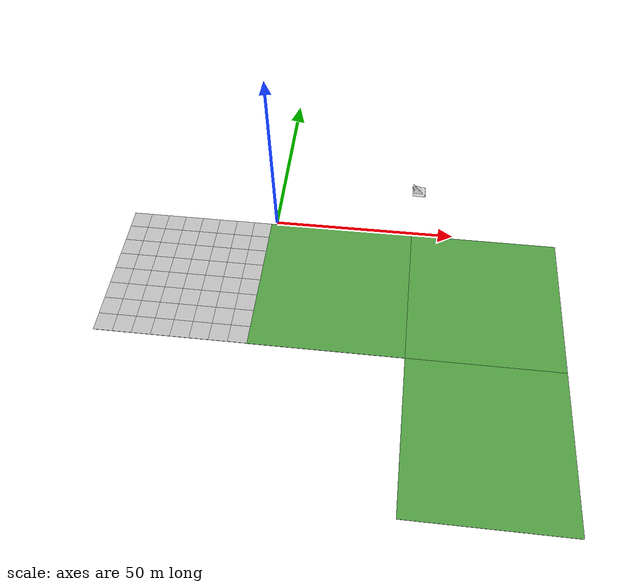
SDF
<sdf version="1.7">
 <world name="default">
  <model name="mud_plane_80x80">
   <model name="mud_plane_40x40">
    <model name="mud_plane_20x20">
     <model name="mud_plane">
      <static>1</static>
      <link name="link">
       <collision name="collision"><geometry><box><size>10 10 0.1</size></box></geometry></collision>
       <visual name="visual_1">
        <pose>-2.5 2.5 -0.05 0 -0 0</pose>
        <cast_shadows>0</cast_shadows>
        <geometry><box><size>5 5 0.1</size></box></geometry>
        <material>
         <script>
          <uri>model://mud_plane/materials/scripts</uri>
          <uri>model://mud_plane/materials/textures</uri>
          <name>vrc/mud</name>
         </script>
        </material>
       </visual>
       <visual name="visual_2">
        <pose>2.5 2.5 -0.05 0 -0 0</pose>
        <cast_shadows>0</cast_shadows>
        <geometry><box><size>5 5 0.1</size></box></geometry>
        <material>
         <script>
          <uri>model://mud_plane/materials/scripts</uri>
          <uri>model://mud_plane/materials/textures</uri>
          <name>vrc/mud</name>
         </script>
        </material>
       </visual>
       <visual name="visual_3">
        <pose>2.5 -2.5 -0.05 0 -0 0</pose>
        <cast_shadows>0</cast_shadows>
        <geometry><box><size>5 5 0.1</size></box></geometry>
        <material>
         <script>
          <uri>model://mud_plane/materials/scripts</uri>
          <uri>model://mud_plane/materials/textures</uri>
          <name>vrc/mud</name>
         </script>
        </material>
       </visual>
       <visual name="visual_4">
        <pose>-2.5 -2.5 -0.05 0 -0 0</pose>
        <cast_shadows>0</cast_shadows>
        <geometry><box><size>5 5 0.1</size></box></geometry>
        <material>
         <script>
          <uri>model://mud_plane/materials/scripts</uri>
          <uri>model://mud_plane/materials/textures</uri>
          <name>vrc/mud</name>
         </script>
        </material>
       </visual>
      </link>
      <pose>-4.99986 -4.99991 0 0 -0 0</pose>
     </model>
     <model name="mud_plane_0">
      <static>1</static>
      <link name="link">
       <collision name="collision"><geometry><box><size>10 10 0.1</size></box></geometry></collision>
       <visual name="visual_1">
        <pose>-2.5 2.5 -0.05 0 -0 0</pose>
        <cast_shadows>0</cast_shadows>
        <geometry><box><size>5 5 0.1</size></box></geometry>
        <material>
         <script>
          <uri>model://mud_plane/materials/scripts</uri>
          <uri>model://mud_plane/materials/textures</uri>
          <name>vrc/mud</name>
         </script>
        </material>
       </visual>
       <visual name="visual_2">
        <pose>2.5 2.5 -0.05 0 -0 0</pose>
        <cast_shadows>0</cast_shadows>
        <geometry><box><size>5 5 0.1</size></box></geometry>
        <material>
         <script>
          <uri>model://mud_plane/materials/scripts</uri>
          <uri>model://mud_plane/materials/textures</uri>
          <name>vrc/mud</name>
         </script>
        </material>
       </visual>
       <visual name="visual_3">
        <pose>2.5 -2.5 -0.05 0 -0 0</pose>
        <cast_shadows>0</cast_shadows>
        <geometry><box><size>5 5 0.1</size></box></geometry>
        <material>
         <script>
          <uri>model://mud_plane/materials/scripts</uri>
          <uri>model://mud_plane/materials/textures</uri>
          <name>vrc/mud</name>
         </script>
        </material>
       </visual>
       <visual name="visual_4">
        <pose>-2.5 -2.5 -0.05 0 -0 0</pose>
        <cast_shadows>0</cast_shadows>
        <geometry><box><size>5 5 0.1</size></box></geometry>
        <material>
         <script>
          <uri>model://mud_plane/materials/scripts</uri>
          <uri>model://mud_plane/materials/textures</uri>
          <name>vrc/mud</name>
         </script>
        </material>
       </visual>
      </link>
      <pose>-4.99946 4.99954 0 0 -0 0</pose>
     </model>
     <model name="mud_plane_1">
      <static>1</static>
      <link name="link">
       <collision name="collision"><geometry><box><size>10 10 0.1</size></box></geometry></collision>
       <visual name="visual_1">
        <pose>-2.5 2.5 -0.05 0 -0 0</pose>
        <cast_shadows>0</cast_shadows>
        <geometry><box><size>5 5 0.1</size></box></geometry>
        <material>
         <script>
          <uri>model://mud_plane/materials/scripts</uri>
          <uri>model://mud_plane/materials/textures</uri>
          <name>vrc/mud</name>
         </script>
        </material>
       </visual>
       <visual name="visual_2">
        <pose>2.5 2.5 -0.05 0 -0 0</pose>
        <cast_shadows>0</cast_shadows>
        <geometry><box><size>5 5 0.1</size></box></geometry>
        <material>
         <script>
          <uri>model://mud_plane/materials/scripts</uri>
          <uri>model://mud_plane/materials/textures</uri>
          <name>vrc/mud</name>
         </script>
        </material>
       </visual>
       <visual name="visual_3">
        <pose>2.5 -2.5 -0.05 0 -0 0</pose>
        <cast_shadows>0</cast_shadows>
        <geometry><box><size>5 5 0.1</size></box></geometry>
        <material>
         <script>
          <uri>model://mud_plane/materials/scripts</uri>
          <uri>model://mud_plane/materials/textures</uri>
          <name>vrc/mud</name>
         </script>
        </material>
       </visual>
       <visual name="visual_4">
        <pose>-2.5 -2.5 -0.05 0 -0 0</pose>
        <cast_shadows>0</cast_shadows>
        <geometry><box><size>5 5 0.1</size></box></geometry>
        <material>
         <script>
          <uri>model://mud_plane/materials/scripts</uri>
          <uri>model://mud_plane/materials/textures</uri>
          <name>vrc/mud</name>
         </script>
        </material>
       </visual>
      </link>
      <pose>4.99964 -4.99949 0 0 -0 0</pose>
     </model>
     <model name="mud_plane_2">
      <static>1</static>
      <link name="link">
       <collision name="collision"><geometry><box><size>10 10 0.1</size></box></geometry></collision>
       <visual name="visual_1">
        <pose>-2.5 2.5 -0.05 0 -0 0</pose>
        <cast_shadows>0</cast_shadows>
        <geometry><box><size>5 5 0.1</size></box></geometry>
        <material>
         <script>
          <uri>model://mud_plane/materials/scripts</uri>
          <uri>model://mud_plane/materials/textures</uri>
          <name>vrc/mud</name>
         </script>
        </material>
       </visual>
       <visual name="visual_2">
        <pose>2.5 2.5 -0.05 0 -0 0</pose>
        <cast_shadows>0</cast_shadows>
        <geometry><box><size>5 5 0.1</size></box></geometry>
        <material>
         <script>
          <uri>model://mud_plane/materials/scripts</uri>
          <uri>model://mud_plane/materials/textures</uri>
          <name>vrc/mud</name>
         </script>
        </material>
       </visual>
       <visual name="visual_3">
        <pose>2.5 -2.5 -0.05 0 -0 0</pose>
        <cast_shadows>0</cast_shadows>
        <geometry><box><size>5 5 0.1</size></box></geometry>
        <material>
         <script>
          <uri>model://mud_plane/materials/scripts</uri>
          <uri>model://mud_plane/materials/textures</uri>
          <name>vrc/mud</name>
         </script>
        </material>
       </visual>
       <visual name="visual_4">
        <pose>-2.5 -2.5 -0.05 0 -0 0</pose>
        <cast_shadows>0</cast_shadows>
        <geometry><box><size>5 5 0.1</size></box></geometry>
        <material>
         <script>
          <uri>model://mud_plane/materials/scripts</uri>
          <uri>model://mud_plane/materials/textures</uri>
          <name>vrc/mud</name>
         </script>
        </material>
       </visual>
      </link>
      <pose>4.99967 4.99986 0 0 -0 0</pose>
     </model>
     <static>0</static>
     <pose>-9.99895 9.99843 0 0 -0 0</pose>
    </model>
    <model name="mud_plane_20x20_0">
     <model name="mud_plane">
      <static>1</static>
      <link name="link">
       <collision name="collision"><geometry><box><size>10 10 0.1</size></box></geometry></collision>
       <visual name="visual_1">
        <pose>-2.5 2.5 -0.05 0 -0 0</pose>
        <cast_shadows>0</cast_shadows>
        <geometry><box><size>5 5 0.1</size></box></geometry>
        <material>
         <script>
          <uri>model://mud_plane/materials/scripts</uri>
          <uri>model://mud_plane/materials/textures</uri>
          <name>vrc/mud</name>
         </script>
        </material>
       </visual>
       <visual name="visual_2">
        <pose>2.5 2.5 -0.05 0 -0 0</pose>
        <cast_shadows>0</cast_shadows>
        <geometry><box><size>5 5 0.1</size></box></geometry>
        <material>
         <script>
          <uri>model://mud_plane/materials/scripts</uri>
          <uri>model://mud_plane/materials/textures</uri>
          <name>vrc/mud</name>
         </script>
        </material>
       </visual>
       <visual name="visual_3">
        <pose>2.5 -2.5 -0.05 0 -0 0</pose>
        <cast_shadows>0</cast_shadows>
        <geometry><box><size>5 5 0.1</size></box></geometry>
        <material>
         <script>
          <uri>model://mud_plane/materials/scripts</uri>
          <uri>model://mud_plane/materials/textures</uri>
          <name>vrc/mud</name>
         </script>
        </material>
       </visual>
       <visual name="visual_4">
        <pose>-2.5 -2.5 -0.05 0 -0 0</pose>
        <cast_shadows>0</cast_shadows>
        <geometry><box><size>5 5 0.1</size></box></geometry>
        <material>
         <script>
          <uri>model://mud_plane/materials/scripts</uri>
          <uri>model://mud_plane/materials/textures</uri>
          <name>vrc/mud</name>
         </script>
        </material>
       </visual>
      </link>
      <pose>-4.99986 -4.99991 0 0 -0 0</pose>
     </model>
     <model name="mud_plane_0">
      <static>1</static>
      <link name="link">
       <collision name="collision"><geometry><box><size>10 10 0.1</size></box></geometry></collision>
       <visual name="visual_1">
        <pose>-2.5 2.5 -0.05 0 -0 0</pose>
        <cast_shadows>0</cast_shadows>
        <geometry><box><size>5 5 0.1</size></box></geometry>
        <material>
         <script>
          <uri>model://mud_plane/materials/scripts</uri>
          <uri>model://mud_plane/materials/textures</uri>
          <name>vrc/mud</name>
         </script>
        </material>
       </visual>
       <visual name="visual_2">
        <pose>2.5 2.5 -0.05 0 -0 0</pose>
        <cast_shadows>0</cast_shadows>
        <geometry><box><size>5 5 0.1</size></box></geometry>
        <material>
         <script>
          <uri>model://mud_plane/materials/scripts</uri>
          <uri>model://mud_plane/materials/textures</uri>
          <name>vrc/mud</name>
         </script>
        </material>
       </visual>
       <visual name="visual_3">
        <pose>2.5 -2.5 -0.05 0 -0 0</pose>
        <cast_shadows>0</cast_shadows>
        <geometry><box><size>5 5 0.1</size></box></geometry>
        <material>
         <script>
          <uri>model://mud_plane/materials/scripts</uri>
          <uri>model://mud_plane/materials/textures</uri>
          <name>vrc/mud</name>
         </script>
        </material>
       </visual>
       <visual name="visual_4">
        <pose>-2.5 -2.5 -0.05 0 -0 0</pose>
        <cast_shadows>0</cast_shadows>
        <geometry><box><size>5 5 0.1</size></box></geometry>
        <material>
         <script>
          <uri>model://mud_plane/materials/scripts</uri>
          <uri>model://mud_plane/materials/textures</uri>
          <name>vrc/mud</name>
         </script>
        </material>
       </visual>
      </link>
      <pose>-4.99946 4.99954 0 0 -0 0</pose>
     </model>
     <model name="mud_plane_1">
      <static>1</static>
      <link name="link">
       <collision name="collision"><geometry><box><size>10 10 0.1</size></box></geometry></collision>
       <visual name="visual_1">
        <pose>-2.5 2.5 -0.05 0 -0 0</pose>
        <cast_shadows>0</cast_shadows>
        <geometry><box><size>5 5 0.1</size></box></geometry>
        <material>
         <script>
          <uri>model://mud_plane/materials/scripts</uri>
          <uri>model://mud_plane/materials/textures</uri>
          <name>vrc/mud</name>
         </script>
        </material>
       </visual>
       <visual name="visual_2">
        <pose>2.5 2.5 -0.05 0 -0 0</pose>
        <cast_shadows>0</cast_shadows>
        <geometry><box><size>5 5 0.1</size></box></geometry>
        <material>
         <script>
          <uri>model://mud_plane/materials/scripts</uri>
          <uri>model://mud_plane/materials/textures</uri>
          <name>vrc/mud</name>
         </script>
        </material>
       </visual>
       <visual name="visual_3">
        <pose>2.5 -2.5 -0.05 0 -0 0</pose>
        <cast_shadows>0</cast_shadows>
        <geometry><box><size>5 5 0.1</size></box></geometry>
        <material>
         <script>
          <uri>model://mud_plane/materials/scripts</uri>
          <uri>model://mud_plane/materials/textures</uri>
          <name>vrc/mud</name>
         </script>
        </material>
       </visual>
       <visual name="visual_4">
        <pose>-2.5 -2.5 -0.05 0 -0 0</pose>
        <cast_shadows>0</cast_shadows>
        <geometry><box><size>5 5 0.1</size></box></geometry>
        <material>
         <script>
          <uri>model://mud_plane/materials/scripts</uri>
          <uri>model://mud_plane/materials/textures</uri>
          <name>vrc/mud</name>
         </script>
        </material>
       </visual>
      </link>
      <pose>4.99964 -4.99949 0 0 -0 0</pose>
     </model>
     <model name="mud_plane_2">
      <static>1</static>
      <link name="link">
       <collision name="collision"><geometry><box><size>10 10 0.1</size></box></geometry></collision>
       <visual name="visual_1">
        <pose>-2.5 2.5 -0.05 0 -0 0</pose>
        <cast_shadows>0</cast_shadows>
        <geometry><box><size>5 5 0.1</size></box></geometry>
        <material>
         <script>
          <uri>model://mud_plane/materials/scripts</uri>
          <uri>model://mud_plane/materials/textures</uri>
          <name>vrc/mud</name>
         </script>
        </material>
       </visual>
       <visual name="visual_2">
        <pose>2.5 2.5 -0.05 0 -0 0</pose>
        <cast_shadows>0</cast_shadows>
        <geometry><box><size>5 5 0.1</size></box></geometry>
        <material>
         <script>
          <uri>model://mud_plane/materials/scripts</uri>
          <uri>model://mud_plane/materials/textures</uri>
          <name>vrc/mud</name>
         </script>
        </material>
       </visual>
       <visual name="visual_3">
        <pose>2.5 -2.5 -0.05 0 -0 0</pose>
        <cast_shadows>0</cast_shadows>
        <geometry><box><size>5 5 0.1</size></box></geometry>
        <material>
         <script>
          <uri>model://mud_plane/materials/scripts</uri>
          <uri>model://mud_plane/materials/textures</uri>
          <name>vrc/mud</name>
         </script>
        </material>
       </visual>
       <visual name="visual_4">
        <pose>-2.5 -2.5 -0.05 0 -0 0</pose>
        <cast_shadows>0</cast_shadows>
        <geometry><box><size>5 5 0.1</size></box></geometry>
        <material>
         <script>
          <uri>model://mud_plane/materials/scripts</uri>
          <uri>model://mud_plane/materials/textures</uri>
          <name>vrc/mud</name>
         </script>
        </material>
       </visual>
      </link>
      <pose>4.99967 4.99986 0 0 -0 0</pose>
     </model>
     <static>0</static>
     <pose>9.99933 9.9997 0 0 -0 0</pose>
    </model>
    <model name="mud_plane_20x20_1">
     <model name="mud_plane">
      <static>1</static>
      <link name="link">
       <collision name="collision"><geometry><box><size>10 10 0.1</size></box></geometry></collision>
       <visual name="visual_1">
        <pose>-2.5 2.5 -0.05 0 -0 0</pose>
        <cast_shadows>0</cast_shadows>
        <geometry><box><size>5 5 0.1</size></box></geometry>
        <material>
         <script>
          <uri>model://mud_plane/materials/scripts</uri>
          <uri>model://mud_plane/materials/textures</uri>
          <name>vrc/mud</name>
         </script>
        </material>
       </visual>
       <visual name="visual_2">
        <pose>2.5 2.5 -0.05 0 -0 0</pose>
        <cast_shadows>0</cast_shadows>
        <geometry><box><size>5 5 0.1</size></box></geometry>
        <material>
         <script>
          <uri>model://mud_plane/materials/scripts</uri>
          <uri>model://mud_plane/materials/textures</uri>
          <name>vrc/mud</name>
         </script>
        </material>
       </visual>
       <visual name="visual_3">
        <pose>2.5 -2.5 -0.05 0 -0 0</pose>
        <cast_shadows>0</cast_shadows>
        <geometry><box><size>5 5 0.1</size></box></geometry>
        <material>
         <script>
          <uri>model://mud_plane/materials/scripts</uri>
          <uri>model://mud_plane/materials/textures</uri>
          <name>vrc/mud</name>
         </script>
        </material>
       </visual>
       <visual name="visual_4">
        <pose>-2.5 -2.5 -0.05 0 -0 0</pose>
        <cast_shadows>0</cast_shadows>
        <geometry><box><size>5 5 0.1</size></box></geometry>
        <material>
         <script>
          <uri>model://mud_plane/materials/scripts</uri>
          <uri>model://mud_plane/materials/textures</uri>
          <name>vrc/mud</name>
         </script>
        </material>
       </visual>
      </link>
      <pose>-4.99986 -4.99991 0 0 -0 0</pose>
     </model>
     <model name="mud_plane_0">
      <static>1</static>
      <link name="link">
       <collision name="collision"><geometry><box><size>10 10 0.1</size></box></geometry></collision>
       <visual name="visual_1">
        <pose>-2.5 2.5 -0.05 0 -0 0</pose>
        <cast_shadows>0</cast_shadows>
        <geometry><box><size>5 5 0.1</size></box></geometry>
        <material>
         <script>
          <uri>model://mud_plane/materials/scripts</uri>
          <uri>model://mud_plane/materials/textures</uri>
          <name>vrc/mud</name>
         </script>
        </material>
       </visual>
       <visual name="visual_2">
        <pose>2.5 2.5 -0.05 0 -0 0</pose>
        <cast_shadows>0</cast_shadows>
        <geometry><box><size>5 5 0.1</size></box></geometry>
        <material>
         <script>
          <uri>model://mud_plane/materials/scripts</uri>
          <uri>model://mud_plane/materials/textures</uri>
          <name>vrc/mud</name>
         </script>
        </material>
       </visual>
       <visual name="visual_3">
        <pose>2.5 -2.5 -0.05 0 -0 0</pose>
        <cast_shadows>0</cast_shadows>
        <geometry><box><size>5 5 0.1</size></box></geometry>
        <material>
         <script>
          <uri>model://mud_plane/materials/scripts</uri>
          <uri>model://mud_plane/materials/textures</uri>
          <name>vrc/mud</name>
         </script>
        </material>
       </visual>
       <visual name="visual_4">
        <pose>-2.5 -2.5 -0.05 0 -0 0</pose>
        <cast_shadows>0</cast_shadows>
        <geometry><box><size>5 5 0.1</size></box></geometry>
        <material>
         <script>
          <uri>model://mud_plane/materials/scripts</uri>
          <uri>model://mud_plane/materials/textures</uri>
          <name>vrc/mud</name>
         </script>
        </material>
       </visual>
      </link>
      <pose>-4.99946 4.99954 0 0 -0 0</pose>
     </model>
     <model name="mud_plane_1">
      <static>1</static>
      <link name="link">
       <collision name="collision"><geometry><box><size>10 10 0.1</size></box></geometry></collision>
       <visual name="visual_1">
        <pose>-2.5 2.5 -0.05 0 -0 0</pose>
        <cast_shadows>0</cast_shadows>
        <geometry><box><size>5 5 0.1</size></box></geometry>
        <material>
         <script>
          <uri>model://mud_plane/materials/scripts</uri>
          <uri>model://mud_plane/materials/textures</uri>
          <name>vrc/mud</name>
         </script>
        </material>
       </visual>
       <visual name="visual_2">
        <pose>2.5 2.5 -0.05 0 -0 0</pose>
        <cast_shadows>0</cast_shadows>
        <geometry><box><size>5 5 0.1</size></box></geometry>
        <material>
         <script>
          <uri>model://mud_plane/materials/scripts</uri>
          <uri>model://mud_plane/materials/textures</uri>
          <name>vrc/mud</name>
         </script>
        </material>
       </visual>
       <visual name="visual_3">
        <pose>2.5 -2.5 -0.05 0 -0 0</pose>
        <cast_shadows>0</cast_shadows>
        <geometry><box><size>5 5 0.1</size></box></geometry>
        <material>
         <script>
          <uri>model://mud_plane/materials/scripts</uri>
          <uri>model://mud_plane/materials/textures</uri>
          <name>vrc/mud</name>
         </script>
        </material>
       </visual>
       <visual name="visual_4">
        <pose>-2.5 -2.5 -0.05 0 -0 0</pose>
        <cast_shadows>0</cast_shadows>
        <geometry><box><size>5 5 0.1</size></box></geometry>
        <material>
         <script>
          <uri>model://mud_plane/materials/scripts</uri>
          <uri>model://mud_plane/materials/textures</uri>
          <name>vrc/mud</name>
         </script>
        </material>
       </visual>
      </link>
      <pose>4.99964 -4.99949 0 0 -0 0</pose>
     </model>
     <model name="mud_plane_2">
      <static>1</static>
      <link name="link">
       <collision name="collision"><geometry><box><size>10 10 0.1</size></box></geometry></collision>
       <visual name="visual_1">
        <pose>-2.5 2.5 -0.05 0 -0 0</pose>
        <cast_shadows>0</cast_shadows>
        <geometry><box><size>5 5 0.1</size></box></geometry>
        <material>
         <script>
          <uri>model://mud_plane/materials/scripts</uri>
          <uri>model://mud_plane/materials/textures</uri>
          <name>vrc/mud</name>
         </script>
        </material>
       </visual>
       <visual name="visual_2">
        <pose>2.5 2.5 -0.05 0 -0 0</pose>
        <cast_shadows>0</cast_shadows>
        <geometry><box><size>5 5 0.1</size></box></geometry>
        <material>
         <script>
          <uri>model://mud_plane/materials/scripts</uri>
          <uri>model://mud_plane/materials/textures</uri>
          <name>vrc/mud</name>
         </script>
        </material>
       </visual>
       <visual name="visual_3">
        <pose>2.5 -2.5 -0.05 0 -0 0</pose>
        <cast_shadows>0</cast_shadows>
        <geometry><box><size>5 5 0.1</size></box></geometry>
        <material>
         <script>
          <uri>model://mud_plane/materials/scripts</uri>
          <uri>model://mud_plane/materials/textures</uri>
          <name>vrc/mud</name>
         </script>
        </material>
       </visual>
       <visual name="visual_4">
        <pose>-2.5 -2.5 -0.05 0 -0 0</pose>
        <cast_shadows>0</cast_shadows>
        <geometry><box><size>5 5 0.1</size></box></geometry>
        <material>
         <script>
          <uri>model://mud_plane/materials/scripts</uri>
          <uri>model://mud_plane/materials/textures</uri>
          <name>vrc/mud</name>
         </script>
        </material>
       </visual>
      </link>
      <pose>4.99967 4.99986 0 0 -0 0</pose>
     </model>
     <static>0</static>
     <pose>9.9993 -9.99877 0 0 -0 0</pose>
    </model>
    <model name="mud_plane_20x20_2">
     <model name="mud_plane">
      <static>1</static>
      <link name="link">
       <collision name="collision"><geometry><box><size>10 10 0.1</size></box></geometry></collision>
       <visual name="visual_1">
        <pose>-2.5 2.5 -0.05 0 -0 0</pose>
        <cast_shadows>0</cast_shadows>
        <geometry><box><size>5 5 0.1</size></box></geometry>
        <material>
         <script>
          <uri>model://mud_plane/materials/scripts</uri>
          <uri>model://mud_plane/materials/textures</uri>
          <name>vrc/mud</name>
         </script>
        </material>
       </visual>
       <visual name="visual_2">
        <pose>2.5 2.5 -0.05 0 -0 0</pose>
        <cast_shadows>0</cast_shadows>
        <geometry><box><size>5 5 0.1</size></box></geometry>
        <material>
         <script>
          <uri>model://mud_plane/materials/scripts</uri>
          <uri>model://mud_plane/materials/textures</uri>
          <name>vrc/mud</name>
         </script>
        </material>
       </visual>
       <visual name="visual_3">
        <pose>2.5 -2.5 -0.05 0 -0 0</pose>
        <cast_shadows>0</cast_shadows>
        <geometry><box><size>5 5 0.1</size></box></geometry>
        <material>
         <script>
          <uri>model://mud_plane/materials/scripts</uri>
          <uri>model://mud_plane/materials/textures</uri>
          <name>vrc/mud</name>
         </script>
        </material>
       </visual>
       <visual name="visual_4">
        <pose>-2.5 -2.5 -0.05 0 -0 0</pose>
        <cast_shadows>0</cast_shadows>
        <geometry><box><size>5 5 0.1</size></box></geometry>
        <material>
         <script>
          <uri>model://mud_plane/materials/scripts</uri>
          <uri>model://mud_plane/materials/textures</uri>
          <name>vrc/mud</name>
         </script>
        </material>
       </visual>
      </link>
      <pose>-4.99986 -4.99991 0 0 -0 0</pose>
     </model>
     <model name="mud_plane_0">
      <static>1</static>
      <link name="link">
       <collision name="collision"><geometry><box><size>10 10 0.1</size></box></geometry></collision>
       <visual name="visual_1">
        <pose>-2.5 2.5 -0.05 0 -0 0</pose>
        <cast_shadows>0</cast_shadows>
        <geometry><box><size>5 5 0.1</size></box></geometry>
        <material>
         <script>
          <uri>model://mud_plane/materials/scripts</uri>
          <uri>model://mud_plane/materials/textures</uri>
          <name>vrc/mud</name>
         </script>
        </material>
       </visual>
       <visual name="visual_2">
        <pose>2.5 2.5 -0.05 0 -0 0</pose>
        <cast_shadows>0</cast_shadows>
        <geometry><box><size>5 5 0.1</size></box></geometry>
        <material>
         <script>
          <uri>model://mud_plane/materials/scripts</uri>
          <uri>model://mud_plane/materials/textures</uri>
          <name>vrc/mud</name>
         </script>
        </material>
       </visual>
       <visual name="visual_3">
        <pose>2.5 -2.5 -0.05 0 -0 0</pose>
        <cast_shadows>0</cast_shadows>
        <geometry><box><size>5 5 0.1</size></box></geometry>
        <material>
         <script>
          <uri>model://mud_plane/materials/scripts</uri>
          <uri>model://mud_plane/materials/textures</uri>
          <name>vrc/mud</name>
         </script>
        </material>
       </visual>
       <visual name="visual_4">
        <pose>-2.5 -2.5 -0.05 0 -0 0</pose>
        <cast_shadows>0</cast_shadows>
        <geometry><box><size>5 5 0.1</size></box></geometry>
        <material>
         <script>
          <uri>model://mud_plane/materials/scripts</uri>
          <uri>model://mud_plane/materials/textures</uri>
          <name>vrc/mud</name>
         </script>
        </material>
       </visual>
      </link>
      <pose>-4.99946 4.99954 0 0 -0 0</pose>
     </model>
     <model name="mud_plane_1">
      <static>1</static>
      <link name="link">
       <collision name="collision"><geometry><box><size>10 10 0.1</size></box></geometry></collision>
       <visual name="visual_1">
        <pose>-2.5 2.5 -0.05 0 -0 0</pose>
        <cast_shadows>0</cast_shadows>
        <geometry><box><size>5 5 0.1</size></box></geometry>
        <material>
         <script>
          <uri>model://mud_plane/materials/scripts</uri>
          <uri>model://mud_plane/materials/textures</uri>
          <name>vrc/mud</name>
         </script>
        </material>
       </visual>
       <visual name="visual_2">
        <pose>2.5 2.5 -0.05 0 -0 0</pose>
        <cast_shadows>0</cast_shadows>
        <geometry><box><size>5 5 0.1</size></box></geometry>
        <material>
         <script>
          <uri>model://mud_plane/materials/scripts</uri>
          <uri>model://mud_plane/materials/textures</uri>
          <name>vrc/mud</name>
         </script>
        </material>
       </visual>
       <visual name="visual_3">
        <pose>2.5 -2.5 -0.05 0 -0 0</pose>
        <cast_shadows>0</cast_shadows>
        <geometry><box><size>5 5 0.1</size></box></geometry>
        <material>
         <script>
          <uri>model://mud_plane/materials/scripts</uri>
          <uri>model://mud_plane/materials/textures</uri>
          <name>vrc/mud</name>
         </script>
        </material>
       </visual>
       <visual name="visual_4">
        <pose>-2.5 -2.5 -0.05 0 -0 0</pose>
        <cast_shadows>0</cast_shadows>
        <geometry><box><size>5 5 0.1</size></box></geometry>
        <material>
         <script>
          <uri>model://mud_plane/materials/scripts</uri>
          <uri>model://mud_plane/materials/textures</uri>
          <name>vrc/mud</name>
         </script>
        </material>
       </visual>
      </link>
      <pose>4.99964 -4.99949 0 0 -0 0</pose>
     </model>
     <model name="mud_plane_2">
      <static>1</static>
      <link name="link">
       <collision name="collision"><geometry><box><size>10 10 0.1</size></box></geometry></collision>
       <visual name="visual_1">
        <pose>-2.5 2.5 -0.05 0 -0 0</pose>
        <cast_shadows>0</cast_shadows>
        <geometry><box><size>5 5 0.1</size></box></geometry>
        <material>
         <script>
          <uri>model://mud_plane/materials/scripts</uri>
          <uri>model://mud_plane/materials/textures</uri>
          <name>vrc/mud</name>
         </script>
        </material>
       </visual>
       <visual name="visual_2">
        <pose>2.5 2.5 -0.05 0 -0 0</pose>
        <cast_shadows>0</cast_shadows>
        <geometry><box><size>5 5 0.1</size></box></geometry>
        <material>
         <script>
          <uri>model://mud_plane/materials/scripts</uri>
          <uri>model://mud_plane/materials/textures</uri>
          <name>vrc/mud</name>
         </script>
        </material>
       </visual>
       <visual name="visual_3">
        <pose>2.5 -2.5 -0.05 0 -0 0</pose>
        <cast_shadows>0</cast_shadows>
        <geometry><box><size>5 5 0.1</size></box></geometry>
        <material>
         <script>
          <uri>model://mud_plane/materials/scripts</uri>
          <uri>model://mud_plane/materials/textures</uri>
          <name>vrc/mud</name>
         </script>
        </material>
       </visual>
       <visual name="visual_4">
        <pose>-2.5 -2.5 -0.05 0 -0 0</pose>
        <cast_shadows>0</cast_shadows>
        <geometry><box><size>5 5 0.1</size></box></geometry>
        <material>
         <script>
          <uri>model://mud_plane/materials/scripts</uri>
          <uri>model://mud_plane/materials/textures</uri>
          <name>vrc/mud</name>
         </script>
        </material>
       </visual>
      </link>
      <pose>4.99967 4.99986 0 0 -0 0</pose>
     </model>
     <static>0</static>
     <pose>-9.99969 -9.99935 0 0 -0 0</pose>
    </model>
    <static>0</static>
    <pose>19.9986 19.9995 0 0 -0 0</pose>
   </model>
   <static>0</static>
   <pose>-41.4444 -40.7382 0 0 -0 0</pose>
  </model>
  <model name="grass_plane_40x40_14">
   <pose>18.5452 -20.7982 -0.05 0 -0 0</pose>
   <static>1</static>
   <link name="link">
    <collision name="collision"><geometry><box><size>40 40 0.1</size></box></geometry></collision>
    <visual name="grass">
     <cast_shadows>0</cast_shadows>
     <geometry><box><size>40 40 0.1</size></box></geometry>
     <material>
      <script><uri>file://media/materials/scripts/gazebo.material</uri><name>Gazebo/Grass</name></script>
     </material>
    </visual>
   </link>
  </model>
  <model name="grass_plane_40x40_15">
   <pose>58.5404 -20.7821 -0.05 0 -0 0</pose>
   <static>1</static>
   <link name="link">
    <collision name="collision"><geometry><box><size>40 40 0.1</size></box></geometry></collision>
    <visual name="grass">
     <cast_shadows>0</cast_shadows>
     <geometry><box><size>40 40 0.1</size></box></geometry>
     <material>
      <script><uri>file://media/materials/scripts/gazebo.material</uri><name>Gazebo/Grass</name></script>
     </material>
    </visual>
   </link>
  </model>
  <model name="grass_plane_40x40_16">
   <pose>58.544 -60.7797 -0.05 0 -0 0</pose>
   <static>1</static>
   <link name="link">
    <collision name="collision"><geometry><box><size>40 40 0.1</size></box></geometry></collision>
    <visual name="grass">
     <cast_shadows>0</cast_shadows>
     <geometry><box><size>40 40 0.1</size></box></geometry>
     <material>
      <script><uri>file://media/materials/scripts/gazebo.material</uri><name>Gazebo/Grass</name></script>
     </material>
    </visual>
   </link>
  </model>
  <model name="bumper">
   <static>1</static>
   <link name="link">
    <visual name="visual">
     <geometry><mesh><uri>model://bumper/meshes/model.dae</uri><scale>50 50 50</scale></mesh></geometry>
    </visual>
   </link>
   <pose>38.2253 18.2878 0 0 0 -1.57</pose>
  </model>
 </world>
</sdf>
